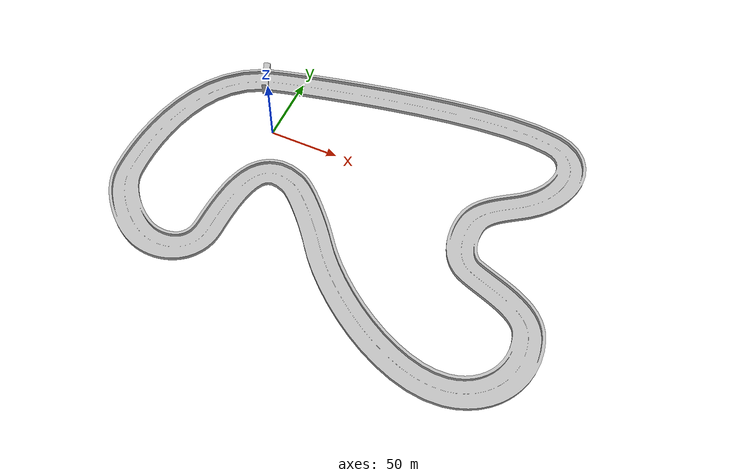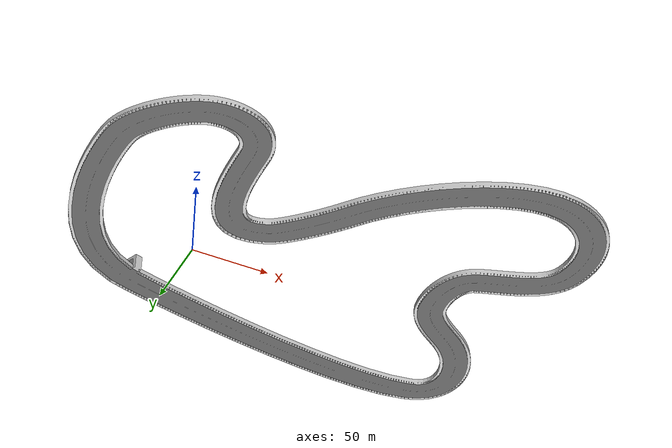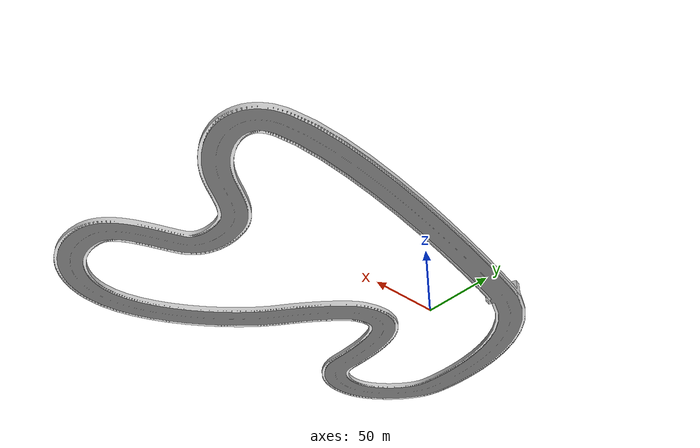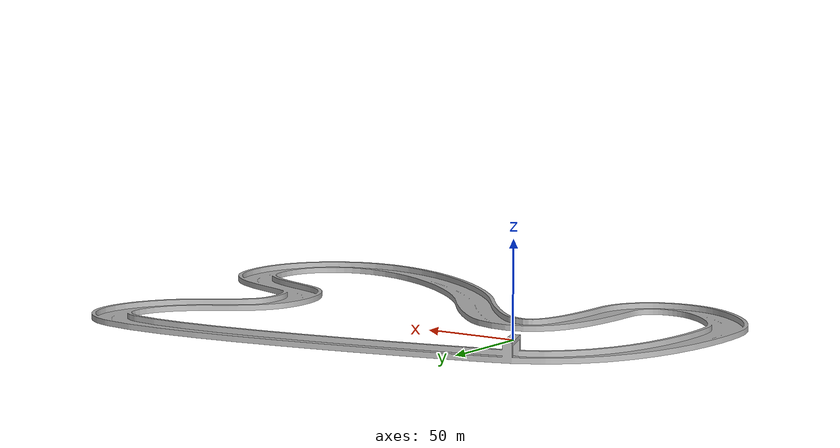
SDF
<?xml version='1.0'?>

<sdf version='1.7'>

  <model name="pau_track">

    <link name="link">

      <collision name="collision">
        <geometry>
          <mesh>
            <uri>model://rcauto_sim_pkg/worlds/models/pau_track/pau_track.stl</uri>
          </mesh>
        </geometry>
      </collision>

      <visual name="visual">
        <geometry>
          <mesh>
            <uri>model://rcauto_sim_pkg/worlds/models/pau_track/pau_track.stl</uri>
          </mesh>
        </geometry>
      </visual>

    </link>

    <static>1</static>

  </model>

</sdf>
